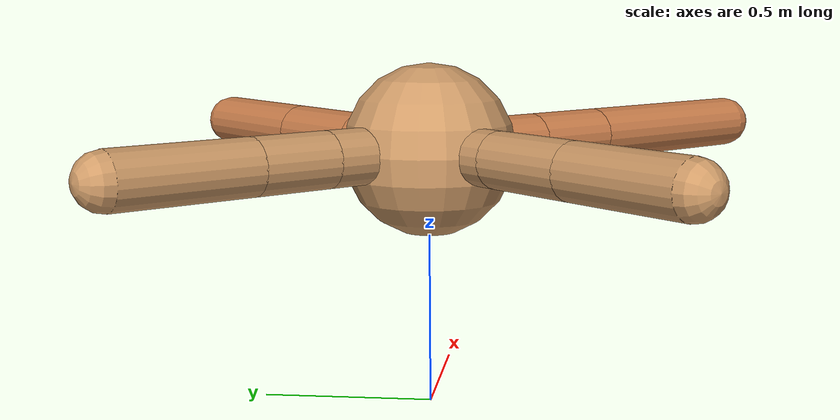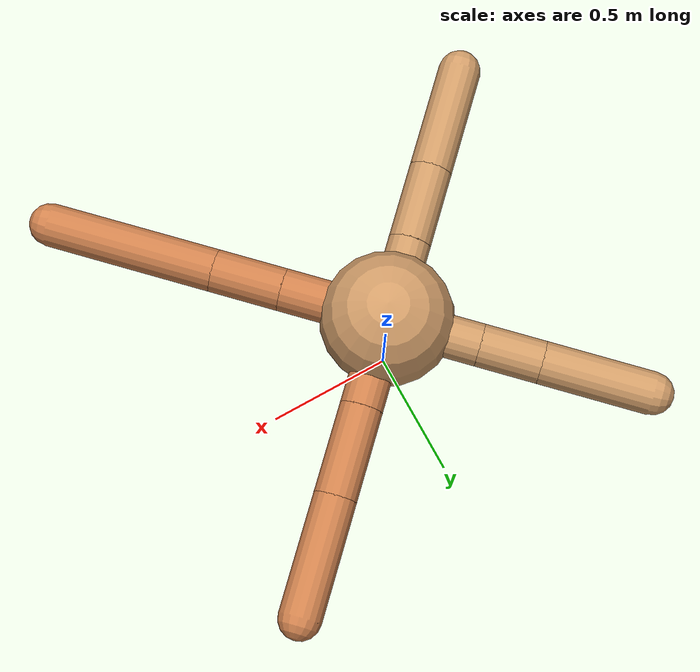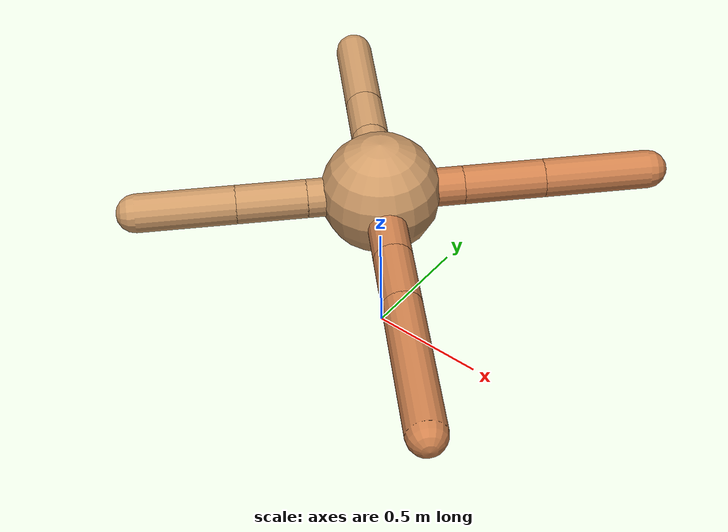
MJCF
<mujoco model="ant">
  <compiler angle="degree" coordinate="local" inertiafromgeom="true" />
  <option integrator="RK4" timestep="0.01" />
  <custom>
    <numeric data="0.0 0.0 0.55 1.0 0.0 0.0 0.0 0.0 1.0 0.0 -1.0 0.0 -1.0 0.0 1.0" name="init_qpos" />
  </custom>
  <default>
    <joint armature="1" damping="1" limited="true" />
    <geom conaffinity="0" condim="3" density="5.0" friction="1.5 0.1 0.1" margin="0.01" rgba="0.8 0.6 0.4 1" />
  </default>
  <worldbody>
    <body name="torso" pos="0 0 0.75">
      <geom name="torso_geom" pos="0 0 0" size="0.25" type="sphere" />

      <body name="front_left_leg" pos="0 0 0">
        <geom fromto="0.0 0.0 0.0 0.24285364703165568 0.24285364703165568 0.0" name="aux_1_geom" size="0.08" type="capsule" rgba=".8 .5 .3 1" />
        <body name="aux_1" pos="0.24285364703165568 0.24285364703165568 0.0">
          <joint axis="0 0 1" name="hip_1" pos="0.0 0.0 0.0" range="-40 40" type="hinge" />
          <geom fromto="0.0 0.0 0.0 0.23910830640738237 0.23910830640738237 0.0" name="left_leg_geom" size="0.08" type="capsule" rgba=".8 .5 .3 1" />
          <body pos="0.23910830640738237 0.23910830640738237 0.0" name="front_left_foot">
            <joint axis="-1 1 0" name="ankle_1" pos="0.0 0.0 0.0" range="30 100" type="hinge" />
            <geom fromto="0.0 0.0 0.0 0.3151189698474662 0.3151189698474662 0.0" name="left_ankle_geom" size="0.08" type="capsule" rgba=".8 .5 .3 1" />
          </body>
        </body>
      </body>
      <body name="front_right_leg" pos="0 0 0">
        <geom fromto="0.0 0.0 0.0 -0.2481970201422294 0.2481970201422294 0.0" name="aux_2_geom" size="0.08" type="capsule" />
        <body name="aux_2" pos="-0.2481970201422294 0.2481970201422294 0.0">
          <joint axis="0 0 1" name="hip_2" pos="0.0 0.0 0.0" range="-40 40" type="hinge" />
          <geom fromto="0.0 0.0 0.0 -0.1640786139278754 0.1640786139278754 0.0" name="right_leg_geom" size="0.08" type="capsule" />
          <body pos="-0.1640786139278754 0.1640786139278754 0.0" name="front_right_foot">
            <joint axis="1 1 0" name="ankle_2" pos="0.0 0.0 0.0" range="-100 -30" type="hinge" />
            <geom fromto="0.0 0.0 0.0 -0.2926110820146139 0.2926110820146139 0.0" name="right_ankle_geom" size="0.08" type="capsule" />
          </body>
        </body>
      </body>
      <body name="left_back_leg" pos="0 0 0">
        <geom fromto="0.0 0.0 0.0 -0.2147389848907841 -0.2147389848907841 0.0" name="aux_3_geom" size="0.08" type="capsule" />
        <body name="aux_3" pos="-0.2147389848907841 -0.2147389848907841 0.0">
          <joint axis="0 0 1" name="hip_3" pos="0.0 0.0 0.0" range="-40 40" type="hinge" />
          <geom fromto="0.0 0.0 0.0 -0.20527373127710616 -0.20527373127710616 0.0" name="back_leg_geom" size="0.08" type="capsule" />
          <body pos="-0.20527373127710616 -0.20527373127710616 0.0" name="left_back_foot">
            <joint axis="-1 1 0" name="ankle_3" pos="0.0 0.0 0.0" range="-100 -30" type="hinge" />
            <geom fromto="0.0 0.0 0.0 -0.28805136116078905 -0.28805136116078905 0.0" name="third_ankle_geom" size="0.08" type="capsule" />
          </body>
        </body>
      </body>
      <body name="right_back_leg" pos="0 0 0">
        <geom fromto="0.0 0.0 0.0 0.28265091610607684 -0.28265091610607684 0.0" name="aux_4_geom" size="0.08" type="capsule" rgba=".8 .5 .3 1" />
        <body name="aux_4" pos="0.28265091610607684 -0.28265091610607684 0.0">
          <joint axis="0 0 1" name="hip_4" pos="0.0 0.0 0.0" range="-40 40" type="hinge" />
          <geom fromto="0.0 0.0 0.0 0.18494332811519085 -0.18494332811519085 0.0" name="rightback_leg_geom" size="0.08" type="capsule" rgba=".8 .5 .3 1" />
          <body pos="0.18494332811519085 -0.18494332811519085 0.0" name="right_back_foot">
            <joint axis="1 1 0" name="ankle_4" pos="0.0 0.0 0.0" range="30 100" type="hinge" />
            <geom fromto="0.0 0.0 0.0 0.44764002404385583 -0.44764002404385583 0.0" name="fourth_ankle_geom" size="0.08" type="capsule" rgba=".8 .5 .3 1" />
          </body>
        </body>
      </body>
    </body>
  </worldbody>
  <actuator>
    <motor ctrllimited="true" ctrlrange="-1.0 1.0" joint="hip_4" gear="150" />
    <motor ctrllimited="true" ctrlrange="-1.0 1.0" joint="ankle_4" gear="150" />
    <motor ctrllimited="true" ctrlrange="-1.0 1.0" joint="hip_1" gear="150" />
    <motor ctrllimited="true" ctrlrange="-1.0 1.0" joint="ankle_1" gear="150" />
    <motor ctrllimited="true" ctrlrange="-1.0 1.0" joint="hip_2" gear="150" />
    <motor ctrllimited="true" ctrlrange="-1.0 1.0" joint="ankle_2" gear="150" />
    <motor ctrllimited="true" ctrlrange="-1.0 1.0" joint="hip_3" gear="150" />
    <motor ctrllimited="true" ctrlrange="-1.0 1.0" joint="ankle_3" gear="150" />
  </actuator>
</mujoco>
